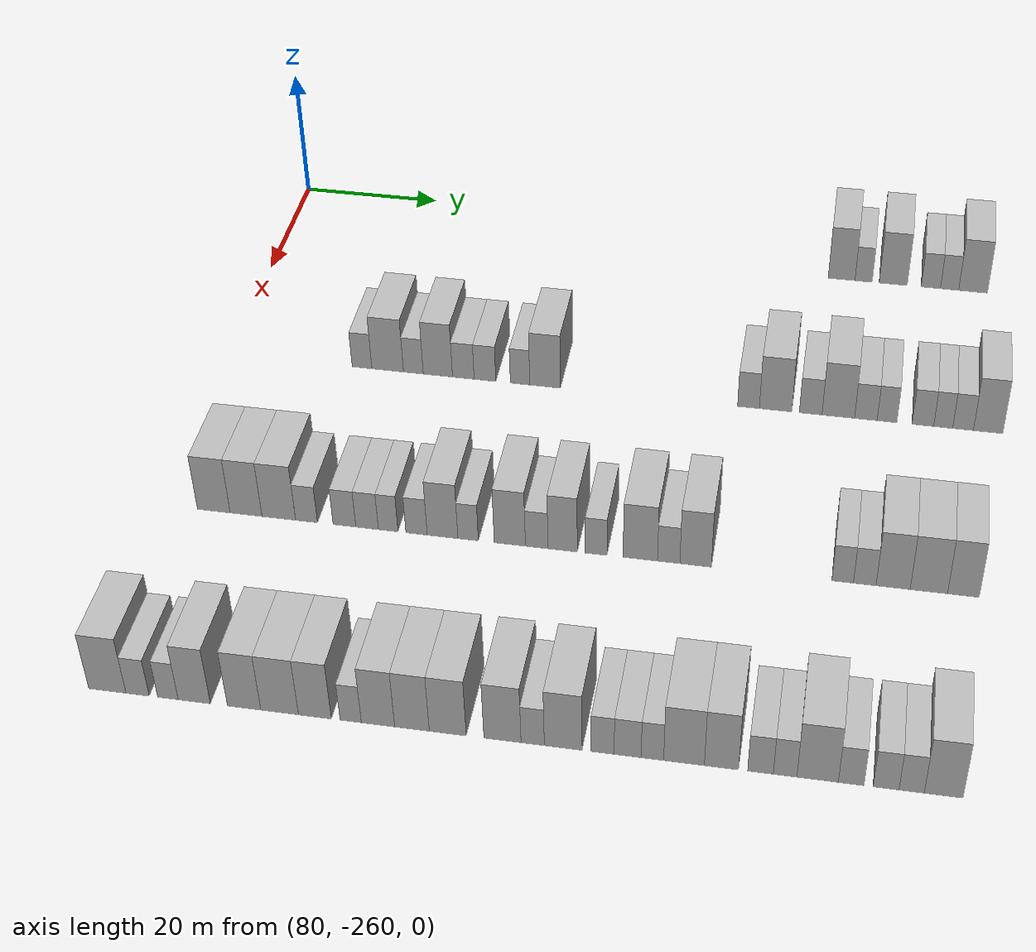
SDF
<sdf version="1.6">
 <world name="default">
  <model name="building_525">
   <static>1</static>
   <pose>85.0000 -178.1124 0 0.000000 0.000000 0.000000</pose>
   <link name="link">
    <pose>0 0 4.50 0 0 0</pose>
    <collision name="collision"><geometry><box><size>10.0000 3.8301 9.0000</size></box></geometry></collision>
    <visual name="visual">
     <cast_shadows>0</cast_shadows>
     <geometry><box><size>10.0000 3.8301 9.0000</size></box></geometry>
     <material>
      <script>
       <uri>model://HANNAS_wall/materials/scripts</uri>
       <uri>model://HANNAS_wall/materials/textures</uri>
       <name>vrc/HANNAS_wall</name>
      </script>
     </material>
    </visual>
   </link>
  </model>
  <model name="building_526">
   <static>1</static>
   <pose>85.0000 -174.9615 0 0.000000 0.000000 0.000000</pose>
   <link name="link">
    <pose>0 0 3.00 0 0 0</pose>
    <collision name="collision"><geometry><box><size>10.0000 2.4717 6.0000</size></box></geometry></collision>
    <visual name="visual">
     <cast_shadows>0</cast_shadows>
     <geometry><box><size>10.0000 2.4717 6.0000</size></box></geometry>
     <material>
      <script>
       <uri>model://HANNAS_wall/materials/scripts</uri>
       <uri>model://HANNAS_wall/materials/textures</uri>
       <name>vrc/HANNAS_wall</name>
      </script>
     </material>
    </visual>
   </link>
  </model>
  <model name="building_527">
   <static>1</static>
   <pose>85.0000 -170.7250 0 0.000000 0.000000 0.000000</pose>
   <link name="link">
    <pose>0 0 4.50 0 0 0</pose>
    <collision name="collision"><geometry><box><size>10.0000 4.0013 9.0000</size></box></geometry></collision>
    <visual name="visual">
     <cast_shadows>0</cast_shadows>
     <geometry><box><size>10.0000 4.0013 9.0000</size></box></geometry>
     <material>
      <script>
       <uri>model://HANNAS_wall/materials/scripts</uri>
       <uri>model://HANNAS_wall/materials/textures</uri>
       <name>vrc/HANNAS_wall</name>
      </script>
     </material>
    </visual>
   </link>
  </model>
  <model name="building_528">
   <static>1</static>
   <pose>85.0000 -165.3638 0 0.000000 0.000000 0.000000</pose>
   <link name="link">
    <pose>0 0 3.00 0 0 0</pose>
    <collision name="collision"><geometry><box><size>10.0000 2.7212 6.0000</size></box></geometry></collision>
    <visual name="visual">
     <cast_shadows>0</cast_shadows>
     <geometry><box><size>10.0000 2.7212 6.0000</size></box></geometry>
     <material>
      <script>
       <uri>model://HANNAS_wall/materials/scripts</uri>
       <uri>model://HANNAS_wall/materials/textures</uri>
       <name>vrc/HANNAS_wall</name>
      </script>
     </material>
    </visual>
   </link>
  </model>
  <model name="building_529">
   <static>1</static>
   <pose>85.0000 -162.7111 0 0.000000 0.000000 0.000000</pose>
   <link name="link">
    <pose>0 0 3.00 0 0 0</pose>
    <collision name="collision"><geometry><box><size>10.0000 2.5842 6.0000</size></box></geometry></collision>
    <visual name="visual">
     <cast_shadows>0</cast_shadows>
     <geometry><box><size>10.0000 2.5842 6.0000</size></box></geometry>
     <material>
      <script>
       <uri>model://HANNAS_wall/materials/scripts</uri>
       <uri>model://HANNAS_wall/materials/textures</uri>
       <name>vrc/HANNAS_wall</name>
      </script>
     </material>
    </visual>
   </link>
  </model>
  <model name="building_530">
   <static>1</static>
   <pose>85.0000 -159.3836 0 0.000000 0.000000 0.000000</pose>
   <link name="link">
    <pose>0 0 4.50 0 0 0</pose>
    <collision name="collision"><geometry><box><size>10.0000 4.0708 9.0000</size></box></geometry></collision>
    <visual name="visual">
     <cast_shadows>0</cast_shadows>
     <geometry><box><size>10.0000 4.0708 9.0000</size></box></geometry>
     <material>
      <script>
       <uri>model://HANNAS_wall/materials/scripts</uri>
       <uri>model://HANNAS_wall/materials/textures</uri>
       <name>vrc/HANNAS_wall</name>
      </script>
     </material>
    </visual>
   </link>
  </model>
  <model name="building_732">
   <static>1</static>
   <pose>115.0000 -241.4664 0 0.000000 0.000000 0.000000</pose>
   <link name="link">
    <pose>0 0 3.00 0 0 0</pose>
    <collision name="collision"><geometry><box><size>10.0000 2.7456 6.0000</size></box></geometry></collision>
    <visual name="visual">
     <cast_shadows>0</cast_shadows>
     <geometry><box><size>10.0000 2.7456 6.0000</size></box></geometry>
     <material>
      <script>
       <uri>model://HANNAS_wall/materials/scripts</uri>
       <uri>model://HANNAS_wall/materials/textures</uri>
       <name>vrc/HANNAS_wall</name>
      </script>
     </material>
    </visual>
   </link>
  </model>
  <model name="building_733">
   <static>1</static>
   <pose>115.0000 -237.8915 0 0.000000 0.000000 0.000000</pose>
   <link name="link">
    <pose>0 0 4.50 0 0 0</pose>
    <collision name="collision"><geometry><box><size>10.0000 4.4044 9.0000</size></box></geometry></collision>
    <visual name="visual">
     <cast_shadows>0</cast_shadows>
     <geometry><box><size>10.0000 4.4044 9.0000</size></box></geometry>
     <material>
      <script>
       <uri>model://HANNAS_wall/materials/scripts</uri>
       <uri>model://HANNAS_wall/materials/textures</uri>
       <name>vrc/HANNAS_wall</name>
      </script>
     </material>
    </visual>
   </link>
  </model>
  <model name="building_734">
   <static>1</static>
   <pose>115.0000 -234.3147 0 0.000000 0.000000 0.000000</pose>
   <link name="link">
    <pose>0 0 3.00 0 0 0</pose>
    <collision name="collision"><geometry><box><size>10.0000 2.7492 6.0000</size></box></geometry></collision>
    <visual name="visual">
     <cast_shadows>0</cast_shadows>
     <geometry><box><size>10.0000 2.7492 6.0000</size></box></geometry>
     <material>
      <script>
       <uri>model://HANNAS_wall/materials/scripts</uri>
       <uri>model://HANNAS_wall/materials/textures</uri>
       <name>vrc/HANNAS_wall</name>
      </script>
     </material>
    </visual>
   </link>
  </model>
  <model name="building_735">
   <static>1</static>
   <pose>115.0000 -230.9154 0 0.000000 0.000000 0.000000</pose>
   <link name="link">
    <pose>0 0 4.50 0 0 0</pose>
    <collision name="collision"><geometry><box><size>10.0000 4.0494 9.0000</size></box></geometry></collision>
    <visual name="visual">
     <cast_shadows>0</cast_shadows>
     <geometry><box><size>10.0000 4.0494 9.0000</size></box></geometry>
     <material>
      <script>
       <uri>model://HANNAS_wall/materials/scripts</uri>
       <uri>model://HANNAS_wall/materials/textures</uri>
       <name>vrc/HANNAS_wall</name>
      </script>
     </material>
    </visual>
   </link>
  </model>
  <model name="building_736">
   <static>1</static>
   <pose>115.0000 -227.3943 0 0.000000 0.000000 0.000000</pose>
   <link name="link">
    <pose>0 0 3.00 0 0 0</pose>
    <collision name="collision"><geometry><box><size>10.0000 2.9928 6.0000</size></box></geometry></collision>
    <visual name="visual">
     <cast_shadows>0</cast_shadows>
     <geometry><box><size>10.0000 2.9928 6.0000</size></box></geometry>
     <material>
      <script>
       <uri>model://HANNAS_wall/materials/scripts</uri>
       <uri>model://HANNAS_wall/materials/textures</uri>
       <name>vrc/HANNAS_wall</name>
      </script>
     </material>
    </visual>
   </link>
  </model>
  <model name="building_737">
   <static>1</static>
   <pose>115.0000 -224.4039 0 0.000000 0.000000 0.000000</pose>
   <link name="link">
    <pose>0 0 3.00 0 0 0</pose>
    <collision name="collision"><geometry><box><size>10.0000 2.9879 6.0000</size></box></geometry></collision>
    <visual name="visual">
     <cast_shadows>0</cast_shadows>
     <geometry><box><size>10.0000 2.9879 6.0000</size></box></geometry>
     <material>
      <script>
       <uri>model://HANNAS_wall/materials/scripts</uri>
       <uri>model://HANNAS_wall/materials/textures</uri>
       <name>vrc/HANNAS_wall</name>
      </script>
     </material>
    </visual>
   </link>
  </model>
  <model name="building_738">
   <static>1</static>
   <pose>115.0000 -219.5782 0 0.000000 0.000000 0.000000</pose>
   <link name="link">
    <pose>0 0 3.00 0 0 0</pose>
    <collision name="collision"><geometry><box><size>10.0000 2.6636 6.0000</size></box></geometry></collision>
    <visual name="visual">
     <cast_shadows>0</cast_shadows>
     <geometry><box><size>10.0000 2.6636 6.0000</size></box></geometry>
     <material>
      <script>
       <uri>model://HANNAS_wall/materials/scripts</uri>
       <uri>model://HANNAS_wall/materials/textures</uri>
       <name>vrc/HANNAS_wall</name>
      </script>
     </material>
    </visual>
   </link>
  </model>
  <model name="building_739">
   <static>1</static>
   <pose>115.0000 -216.1465 0 0.000000 0.000000 0.000000</pose>
   <link name="link">
    <pose>0 0 4.50 0 0 0</pose>
    <collision name="collision"><geometry><box><size>10.0000 4.1998 9.0000</size></box></geometry></collision>
    <visual name="visual">
     <cast_shadows>0</cast_shadows>
     <geometry><box><size>10.0000 4.1998 9.0000</size></box></geometry>
     <material>
      <script>
       <uri>model://HANNAS_wall/materials/scripts</uri>
       <uri>model://HANNAS_wall/materials/textures</uri>
       <name>vrc/HANNAS_wall</name>
      </script>
     </material>
    </visual>
   </link>
  </model>
  <model name="building_740">
   <static>1</static>
   <pose>115.0000 -188.7071 0 0.000000 0.000000 0.000000</pose>
   <link name="link">
    <pose>0 0 3.00 0 0 0</pose>
    <collision name="collision"><geometry><box><size>10.0000 2.8929 6.0000</size></box></geometry></collision>
    <visual name="visual">
     <cast_shadows>0</cast_shadows>
     <geometry><box><size>10.0000 2.8929 6.0000</size></box></geometry>
     <material>
      <script>
       <uri>model://HANNAS_wall/materials/scripts</uri>
       <uri>model://HANNAS_wall/materials/textures</uri>
       <name>vrc/HANNAS_wall</name>
      </script>
     </material>
    </visual>
   </link>
  </model>
  <model name="building_741">
   <static>1</static>
   <pose>115.0000 -185.0999 0 0.000000 0.000000 0.000000</pose>
   <link name="link">
    <pose>0 0 4.50 0 0 0</pose>
    <collision name="collision"><geometry><box><size>10.0000 4.3215 9.0000</size></box></geometry></collision>
    <visual name="visual">
     <cast_shadows>0</cast_shadows>
     <geometry><box><size>10.0000 4.3215 9.0000</size></box></geometry>
     <material>
      <script>
       <uri>model://HANNAS_wall/materials/scripts</uri>
       <uri>model://HANNAS_wall/materials/textures</uri>
       <name>vrc/HANNAS_wall</name>
      </script>
     </material>
    </visual>
   </link>
  </model>
  <model name="building_742">
   <static>1</static>
   <pose>115.0000 -180.4440 0 0.000000 0.000000 0.000000</pose>
   <link name="link">
    <pose>0 0 3.00 0 0 0</pose>
    <collision name="collision"><geometry><box><size>10.0000 2.9902 6.0000</size></box></geometry></collision>
    <visual name="visual">
     <cast_shadows>0</cast_shadows>
     <geometry><box><size>10.0000 2.9902 6.0000</size></box></geometry>
     <material>
      <script>
       <uri>model://HANNAS_wall/materials/scripts</uri>
       <uri>model://HANNAS_wall/materials/textures</uri>
       <name>vrc/HANNAS_wall</name>
      </script>
     </material>
    </visual>
   </link>
  </model>
  <model name="building_743">
   <static>1</static>
   <pose>115.0000 -176.8045 0 0.000000 0.000000 0.000000</pose>
   <link name="link">
    <pose>0 0 4.50 0 0 0</pose>
    <collision name="collision"><geometry><box><size>10.0000 4.2887 9.0000</size></box></geometry></collision>
    <visual name="visual">
     <cast_shadows>0</cast_shadows>
     <geometry><box><size>10.0000 4.2887 9.0000</size></box></geometry>
     <material>
      <script>
       <uri>model://HANNAS_wall/materials/scripts</uri>
       <uri>model://HANNAS_wall/materials/textures</uri>
       <name>vrc/HANNAS_wall</name>
      </script>
     </material>
    </visual>
   </link>
  </model>
  <model name="building_744">
   <static>1</static>
   <pose>115.0000 -173.1736 0 0.000000 0.000000 0.000000</pose>
   <link name="link">
    <pose>0 0 3.00 0 0 0</pose>
    <collision name="collision"><geometry><box><size>10.0000 2.9733 6.0000</size></box></geometry></collision>
    <visual name="visual">
     <cast_shadows>0</cast_shadows>
     <geometry><box><size>10.0000 2.9733 6.0000</size></box></geometry>
     <material>
      <script>
       <uri>model://HANNAS_wall/materials/scripts</uri>
       <uri>model://HANNAS_wall/materials/textures</uri>
       <name>vrc/HANNAS_wall</name>
      </script>
     </material>
    </visual>
   </link>
  </model>
  <model name="building_745">
   <static>1</static>
   <pose>115.0000 -170.3960 0 0.000000 0.000000 0.000000</pose>
   <link name="link">
    <pose>0 0 3.00 0 0 0</pose>
    <collision name="collision"><geometry><box><size>10.0000 2.5818 6.0000</size></box></geometry></collision>
    <visual name="visual">
     <cast_shadows>0</cast_shadows>
     <geometry><box><size>10.0000 2.5818 6.0000</size></box></geometry>
     <material>
      <script>
       <uri>model://HANNAS_wall/materials/scripts</uri>
       <uri>model://HANNAS_wall/materials/textures</uri>
       <name>vrc/HANNAS_wall</name>
      </script>
     </material>
    </visual>
   </link>
  </model>
  <model name="building_746">
   <static>1</static>
   <pose>115.0000 -165.6988 0 0.000000 0.000000 0.000000</pose>
   <link name="link">
    <pose>0 0 3.00 0 0 0</pose>
    <collision name="collision"><geometry><box><size>10.0000 2.8127 6.0000</size></box></geometry></collision>
    <visual name="visual">
     <cast_shadows>0</cast_shadows>
     <geometry><box><size>10.0000 2.8127 6.0000</size></box></geometry>
     <material>
      <script>
       <uri>model://HANNAS_wall/materials/scripts</uri>
       <uri>model://HANNAS_wall/materials/textures</uri>
       <name>vrc/HANNAS_wall</name>
      </script>
     </material>
    </visual>
   </link>
  </model>
  <model name="building_747">
   <static>1</static>
   <pose>115.0000 -163.0574 0 0.000000 0.000000 0.000000</pose>
   <link name="link">
    <pose>0 0 3.00 0 0 0</pose>
    <collision name="collision"><geometry><box><size>10.0000 2.4701 6.0000</size></box></geometry></collision>
    <visual name="visual">
     <cast_shadows>0</cast_shadows>
     <geometry><box><size>10.0000 2.4701 6.0000</size></box></geometry>
     <material>
      <script>
       <uri>model://HANNAS_wall/materials/scripts</uri>
       <uri>model://HANNAS_wall/materials/textures</uri>
       <name>vrc/HANNAS_wall</name>
      </script>
     </material>
    </visual>
   </link>
  </model>
  <model name="building_748">
   <static>1</static>
   <pose>115.0000 -160.4765 0 0.000000 0.000000 0.000000</pose>
   <link name="link">
    <pose>0 0 3.00 0 0 0</pose>
    <collision name="collision"><geometry><box><size>10.0000 2.6918 6.0000</size></box></geometry></collision>
    <visual name="visual">
     <cast_shadows>0</cast_shadows>
     <geometry><box><size>10.0000 2.6918 6.0000</size></box></geometry>
     <material>
      <script>
       <uri>model://HANNAS_wall/materials/scripts</uri>
       <uri>model://HANNAS_wall/materials/textures</uri>
       <name>vrc/HANNAS_wall</name>
      </script>
     </material>
    </visual>
   </link>
  </model>
  <model name="building_749">
   <static>1</static>
   <pose>115.0000 -157.2263 0 0.000000 0.000000 0.000000</pose>
   <link name="link">
    <pose>0 0 4.50 0 0 0</pose>
    <collision name="collision"><geometry><box><size>10.0000 3.8086 9.0000</size></box></geometry></collision>
    <visual name="visual">
     <cast_shadows>0</cast_shadows>
     <geometry><box><size>10.0000 3.8086 9.0000</size></box></geometry>
     <material>
      <script>
       <uri>model://HANNAS_wall/materials/scripts</uri>
       <uri>model://HANNAS_wall/materials/textures</uri>
       <name>vrc/HANNAS_wall</name>
      </script>
     </material>
    </visual>
   </link>
  </model>
  <model name="building_962">
   <static>1</static>
   <pose>145.0000 -252.9162 0 0.000000 0.000000 0.000000</pose>
   <link name="link">
    <pose>0 0 4.50 0 0 0</pose>
    <collision name="collision"><geometry><box><size>10.0000 4.2448 9.0000</size></box></geometry></collision>
    <visual name="visual">
     <cast_shadows>0</cast_shadows>
     <geometry><box><size>10.0000 4.2448 9.0000</size></box></geometry>
     <material>
      <script>
       <uri>model://HANNAS_wall/materials/scripts</uri>
       <uri>model://HANNAS_wall/materials/textures</uri>
       <name>vrc/HANNAS_wall</name>
      </script>
     </material>
    </visual>
   </link>
  </model>
  <model name="building_963">
   <static>1</static>
   <pose>145.0000 -248.7397 0 0.000000 0.000000 0.000000</pose>
   <link name="link">
    <pose>0 0 4.50 0 0 0</pose>
    <collision name="collision"><geometry><box><size>10.0000 4.1081 9.0000</size></box></geometry></collision>
    <visual name="visual">
     <cast_shadows>0</cast_shadows>
     <geometry><box><size>10.0000 4.1081 9.0000</size></box></geometry>
     <material>
      <script>
       <uri>model://HANNAS_wall/materials/scripts</uri>
       <uri>model://HANNAS_wall/materials/textures</uri>
       <name>vrc/HANNAS_wall</name>
      </script>
     </material>
    </visual>
   </link>
  </model>
  <model name="building_964">
   <static>1</static>
   <pose>145.0000 -244.5175 0 0.000000 0.000000 0.000000</pose>
   <link name="link">
    <pose>0 0 4.50 0 0 0</pose>
    <collision name="collision"><geometry><box><size>10.0000 4.3364 9.0000</size></box></geometry></collision>
    <visual name="visual">
     <cast_shadows>0</cast_shadows>
     <geometry><box><size>10.0000 4.3364 9.0000</size></box></geometry>
     <material>
      <script>
       <uri>model://HANNAS_wall/materials/scripts</uri>
       <uri>model://HANNAS_wall/materials/textures</uri>
       <name>vrc/HANNAS_wall</name>
      </script>
     </material>
    </visual>
   </link>
  </model>
  <model name="building_965">
   <static>1</static>
   <pose>145.0000 -240.9493 0 0.000000 0.000000 0.000000</pose>
   <link name="link">
    <pose>0 0 3.00 0 0 0</pose>
    <collision name="collision"><geometry><box><size>10.0000 2.7999 6.0000</size></box></geometry></collision>
    <visual name="visual">
     <cast_shadows>0</cast_shadows>
     <geometry><box><size>10.0000 2.7999 6.0000</size></box></geometry>
     <material>
      <script>
       <uri>model://HANNAS_wall/materials/scripts</uri>
       <uri>model://HANNAS_wall/materials/textures</uri>
       <name>vrc/HANNAS_wall</name>
      </script>
     </material>
    </visual>
   </link>
  </model>
  <model name="building_966">
   <static>1</static>
   <pose>145.0000 -236.1044 0 0.000000 0.000000 0.000000</pose>
   <link name="link">
    <pose>0 0 3.00 0 0 0</pose>
    <collision name="collision"><geometry><box><size>10.0000 2.8899 6.0000</size></box></geometry></collision>
    <visual name="visual">
     <cast_shadows>0</cast_shadows>
     <geometry><box><size>10.0000 2.8899 6.0000</size></box></geometry>
     <material>
      <script>
       <uri>model://HANNAS_wall/materials/scripts</uri>
       <uri>model://HANNAS_wall/materials/textures</uri>
       <name>vrc/HANNAS_wall</name>
      </script>
     </material>
    </visual>
   </link>
  </model>
  <model name="building_967">
   <static>1</static>
   <pose>145.0000 -233.2226 0 0.000000 0.000000 0.000000</pose>
   <link name="link">
    <pose>0 0 3.00 0 0 0</pose>
    <collision name="collision"><geometry><box><size>10.0000 2.8736 6.0000</size></box></geometry></collision>
    <visual name="visual">
     <cast_shadows>0</cast_shadows>
     <geometry><box><size>10.0000 2.8736 6.0000</size></box></geometry>
     <material>
      <script>
       <uri>model://HANNAS_wall/materials/scripts</uri>
       <uri>model://HANNAS_wall/materials/textures</uri>
       <name>vrc/HANNAS_wall</name>
      </script>
     </material>
    </visual>
   </link>
  </model>
  <model name="building_968">
   <static>1</static>
   <pose>145.0000 -230.5410 0 0.000000 0.000000 0.000000</pose>
   <link name="link">
    <pose>0 0 3.00 0 0 0</pose>
    <collision name="collision"><geometry><box><size>10.0000 2.4896 6.0000</size></box></geometry></collision>
    <visual name="visual">
     <cast_shadows>0</cast_shadows>
     <geometry><box><size>10.0000 2.4896 6.0000</size></box></geometry>
     <material>
      <script>
       <uri>model://HANNAS_wall/materials/scripts</uri>
       <uri>model://HANNAS_wall/materials/textures</uri>
       <name>vrc/HANNAS_wall</name>
      </script>
     </material>
    </visual>
   </link>
  </model>
  <model name="building_969">
   <static>1</static>
   <pose>145.0000 -226.9510 0 0.000000 0.000000 0.000000</pose>
   <link name="link">
    <pose>0 0 3.00 0 0 0</pose>
    <collision name="collision"><geometry><box><size>10.0000 2.6904 6.0000</size></box></geometry></collision>
    <visual name="visual">
     <cast_shadows>0</cast_shadows>
     <geometry><box><size>10.0000 2.6904 6.0000</size></box></geometry>
     <material>
      <script>
       <uri>model://HANNAS_wall/materials/scripts</uri>
       <uri>model://HANNAS_wall/materials/textures</uri>
       <name>vrc/HANNAS_wall</name>
      </script>
     </material>
    </visual>
   </link>
  </model>
  <model name="building_970">
   <static>1</static>
   <pose>145.0000 -223.6687 0 0.000000 0.000000 0.000000</pose>
   <link name="link">
    <pose>0 0 4.50 0 0 0</pose>
    <collision name="collision"><geometry><box><size>10.0000 3.8743 9.0000</size></box></geometry></collision>
    <visual name="visual">
     <cast_shadows>0</cast_shadows>
     <geometry><box><size>10.0000 3.8743 9.0000</size></box></geometry>
     <material>
      <script>
       <uri>model://HANNAS_wall/materials/scripts</uri>
       <uri>model://HANNAS_wall/materials/textures</uri>
       <name>vrc/HANNAS_wall</name>
      </script>
     </material>
    </visual>
   </link>
  </model>
  <model name="building_971">
   <static>1</static>
   <pose>145.0000 -220.4472 0 0.000000 0.000000 0.000000</pose>
   <link name="link">
    <pose>0 0 3.00 0 0 0</pose>
    <collision name="collision"><geometry><box><size>10.0000 2.5687 6.0000</size></box></geometry></collision>
    <visual name="visual">
     <cast_shadows>0</cast_shadows>
     <geometry><box><size>10.0000 2.5687 6.0000</size></box></geometry>
     <material>
      <script>
       <uri>model://HANNAS_wall/materials/scripts</uri>
       <uri>model://HANNAS_wall/materials/textures</uri>
       <name>vrc/HANNAS_wall</name>
      </script>
     </material>
    </visual>
   </link>
  </model>
  <model name="building_972">
   <static>1</static>
   <pose>145.0000 -215.2169 0 0.000000 0.000000 0.000000</pose>
   <link name="link">
    <pose>0 0 4.50 0 0 0</pose>
    <collision name="collision"><geometry><box><size>10.0000 3.8918 9.0000</size></box></geometry></collision>
    <visual name="visual">
     <cast_shadows>0</cast_shadows>
     <geometry><box><size>10.0000 3.8918 9.0000</size></box></geometry>
     <material>
      <script>
       <uri>model://HANNAS_wall/materials/scripts</uri>
       <uri>model://HANNAS_wall/materials/textures</uri>
       <name>vrc/HANNAS_wall</name>
      </script>
     </material>
    </visual>
   </link>
  </model>
  <model name="building_973">
   <static>1</static>
   <pose>145.0000 -211.8642 0 0.000000 0.000000 0.000000</pose>
   <link name="link">
    <pose>0 0 3.00 0 0 0</pose>
    <collision name="collision"><geometry><box><size>10.0000 2.8136 6.0000</size></box></geometry></collision>
    <visual name="visual">
     <cast_shadows>0</cast_shadows>
     <geometry><box><size>10.0000 2.8136 6.0000</size></box></geometry>
     <material>
      <script>
       <uri>model://HANNAS_wall/materials/scripts</uri>
       <uri>model://HANNAS_wall/materials/textures</uri>
       <name>vrc/HANNAS_wall</name>
      </script>
     </material>
    </visual>
   </link>
  </model>
  <model name="building_974">
   <static>1</static>
   <pose>145.0000 -208.6394 0 0.000000 0.000000 0.000000</pose>
   <link name="link">
    <pose>0 0 4.50 0 0 0</pose>
    <collision name="collision"><geometry><box><size>10.0000 3.6361 9.0000</size></box></geometry></collision>
    <visual name="visual">
     <cast_shadows>0</cast_shadows>
     <geometry><box><size>10.0000 3.6361 9.0000</size></box></geometry>
     <material>
      <script>
       <uri>model://HANNAS_wall/materials/scripts</uri>
       <uri>model://HANNAS_wall/materials/textures</uri>
       <name>vrc/HANNAS_wall</name>
      </script>
     </material>
    </visual>
   </link>
  </model>
  <model name="building_975">
   <static>1</static>
   <pose>145.0000 -204.4892 0 0.000000 0.000000 0.000000</pose>
   <link name="link">
    <pose>0 0 3.00 0 0 0</pose>
    <collision name="collision"><geometry><box><size>10.0000 2.6643 6.0000</size></box></geometry></collision>
    <visual name="visual">
     <cast_shadows>0</cast_shadows>
     <geometry><box><size>10.0000 2.6643 6.0000</size></box></geometry>
     <material>
      <script>
       <uri>model://HANNAS_wall/materials/scripts</uri>
       <uri>model://HANNAS_wall/materials/textures</uri>
       <name>vrc/HANNAS_wall</name>
      </script>
     </material>
    </visual>
   </link>
  </model>
  <model name="building_976">
   <static>1</static>
   <pose>145.0000 -199.0519 0 0.000000 0.000000 0.000000</pose>
   <link name="link">
    <pose>0 0 4.50 0 0 0</pose>
    <collision name="collision"><geometry><box><size>10.0000 4.2102 9.0000</size></box></geometry></collision>
    <visual name="visual">
     <cast_shadows>0</cast_shadows>
     <geometry><box><size>10.0000 4.2102 9.0000</size></box></geometry>
     <material>
      <script>
       <uri>model://HANNAS_wall/materials/scripts</uri>
       <uri>model://HANNAS_wall/materials/textures</uri>
       <name>vrc/HANNAS_wall</name>
      </script>
     </material>
    </visual>
   </link>
  </model>
  <model name="building_977">
   <static>1</static>
   <pose>145.0000 -195.5742 0 0.000000 0.000000 0.000000</pose>
   <link name="link">
    <pose>0 0 3.00 0 0 0</pose>
    <collision name="collision"><geometry><box><size>10.0000 2.7451 6.0000</size></box></geometry></collision>
    <visual name="visual">
     <cast_shadows>0</cast_shadows>
     <geometry><box><size>10.0000 2.7451 6.0000</size></box></geometry>
     <material>
      <script>
       <uri>model://HANNAS_wall/materials/scripts</uri>
       <uri>model://HANNAS_wall/materials/textures</uri>
       <name>vrc/HANNAS_wall</name>
      </script>
     </material>
    </visual>
   </link>
  </model>
  <model name="building_978">
   <static>1</static>
   <pose>145.0000 -192.2765 0 0.000000 0.000000 0.000000</pose>
   <link name="link">
    <pose>0 0 4.50 0 0 0</pose>
    <collision name="collision"><geometry><box><size>10.0000 3.8504 9.0000</size></box></geometry></collision>
    <visual name="visual">
     <cast_shadows>0</cast_shadows>
     <geometry><box><size>10.0000 3.8504 9.0000</size></box></geometry>
     <material>
      <script>
       <uri>model://HANNAS_wall/materials/scripts</uri>
       <uri>model://HANNAS_wall/materials/textures</uri>
       <name>vrc/HANNAS_wall</name>
      </script>
     </material>
    </visual>
   </link>
  </model>
  <model name="building_979">
   <static>1</static>
   <pose>145.0000 -174.4854 0 0.000000 0.000000 0.000000</pose>
   <link name="link">
    <pose>0 0 3.00 0 0 0</pose>
    <collision name="collision"><geometry><box><size>10.0000 2.5773 6.0000</size></box></geometry></collision>
    <visual name="visual">
     <cast_shadows>0</cast_shadows>
     <geometry><box><size>10.0000 2.5773 6.0000</size></box></geometry>
     <material>
      <script>
       <uri>model://HANNAS_wall/materials/scripts</uri>
       <uri>model://HANNAS_wall/materials/textures</uri>
       <name>vrc/HANNAS_wall</name>
      </script>
     </material>
    </visual>
   </link>
  </model>
  <model name="building_980">
   <static>1</static>
   <pose>145.0000 -171.8385 0 0.000000 0.000000 0.000000</pose>
   <link name="link">
    <pose>0 0 3.00 0 0 0</pose>
    <collision name="collision"><geometry><box><size>10.0000 2.7165 6.0000</size></box></geometry></collision>
    <visual name="visual">
     <cast_shadows>0</cast_shadows>
     <geometry><box><size>10.0000 2.7165 6.0000</size></box></geometry>
     <material>
      <script>
       <uri>model://HANNAS_wall/materials/scripts</uri>
       <uri>model://HANNAS_wall/materials/textures</uri>
       <name>vrc/HANNAS_wall</name>
      </script>
     </material>
    </visual>
   </link>
  </model>
  <model name="building_981">
   <static>1</static>
   <pose>145.0000 -168.4534 0 0.000000 0.000000 0.000000</pose>
   <link name="link">
    <pose>0 0 4.50 0 0 0</pose>
    <collision name="collision"><geometry><box><size>10.0000 4.0537 9.0000</size></box></geometry></collision>
    <visual name="visual">
     <cast_shadows>0</cast_shadows>
     <geometry><box><size>10.0000 4.0537 9.0000</size></box></geometry>
     <material>
      <script>
       <uri>model://HANNAS_wall/materials/scripts</uri>
       <uri>model://HANNAS_wall/materials/textures</uri>
       <name>vrc/HANNAS_wall</name>
      </script>
     </material>
    </visual>
   </link>
  </model>
  <model name="building_982">
   <static>1</static>
   <pose>145.0000 -164.2059 0 0.000000 0.000000 0.000000</pose>
   <link name="link">
    <pose>0 0 4.50 0 0 0</pose>
    <collision name="collision"><geometry><box><size>10.0000 4.4413 9.0000</size></box></geometry></collision>
    <visual name="visual">
     <cast_shadows>0</cast_shadows>
     <geometry><box><size>10.0000 4.4413 9.0000</size></box></geometry>
     <material>
      <script>
       <uri>model://HANNAS_wall/materials/scripts</uri>
       <uri>model://HANNAS_wall/materials/textures</uri>
       <name>vrc/HANNAS_wall</name>
      </script>
     </material>
    </visual>
   </link>
  </model>
  <model name="building_983">
   <static>1</static>
   <pose>145.0000 -160.1131 0 0.000000 0.000000 0.000000</pose>
   <link name="link">
    <pose>0 0 4.50 0 0 0</pose>
    <collision name="collision"><geometry><box><size>10.0000 3.7444 9.0000</size></box></geometry></collision>
    <visual name="visual">
     <cast_shadows>0</cast_shadows>
     <geometry><box><size>10.0000 3.7444 9.0000</size></box></geometry>
     <material>
      <script>
       <uri>model://HANNAS_wall/materials/scripts</uri>
       <uri>model://HANNAS_wall/materials/textures</uri>
       <name>vrc/HANNAS_wall</name>
      </script>
     </material>
    </visual>
   </link>
  </model>
  <model name="building_1192">
   <static>1</static>
   <pose>175.0000 -255.9592 0 0.000000 0.000000 0.000000</pose>
   <link name="link">
    <pose>0 0 4.50 0 0 0</pose>
    <collision name="collision"><geometry><box><size>10.0000 4.4086 9.0000</size></box></geometry></collision>
    <visual name="visual">
     <cast_shadows>0</cast_shadows>
     <geometry><box><size>10.0000 4.4086 9.0000</size></box></geometry>
     <material>
      <script>
       <uri>model://HANNAS_wall/materials/scripts</uri>
       <uri>model://HANNAS_wall/materials/textures</uri>
       <name>vrc/HANNAS_wall</name>
      </script>
     </material>
    </visual>
   </link>
  </model>
  <model name="building_1193">
   <static>1</static>
   <pose>175.0000 -252.3829 0 0.000000 0.000000 0.000000</pose>
   <link name="link">
    <pose>0 0 3.00 0 0 0</pose>
    <collision name="collision"><geometry><box><size>10.0000 2.7440 6.0000</size></box></geometry></collision>
    <visual name="visual">
     <cast_shadows>0</cast_shadows>
     <geometry><box><size>10.0000 2.7440 6.0000</size></box></geometry>
     <material>
      <script>
       <uri>model://HANNAS_wall/materials/scripts</uri>
       <uri>model://HANNAS_wall/materials/textures</uri>
       <name>vrc/HANNAS_wall</name>
      </script>
     </material>
    </visual>
   </link>
  </model>
  <model name="building_1194">
   <static>1</static>
   <pose>175.0000 -248.8060 0 0.000000 0.000000 0.000000</pose>
   <link name="link">
    <pose>0 0 3.00 0 0 0</pose>
    <collision name="collision"><geometry><box><size>10.0000 2.4097 6.0000</size></box></geometry></collision>
    <visual name="visual">
     <cast_shadows>0</cast_shadows>
     <geometry><box><size>10.0000 2.4097 6.0000</size></box></geometry>
     <material>
      <script>
       <uri>model://HANNAS_wall/materials/scripts</uri>
       <uri>model://HANNAS_wall/materials/textures</uri>
       <name>vrc/HANNAS_wall</name>
      </script>
     </material>
    </visual>
   </link>
  </model>
  <model name="building_1195">
   <static>1</static>
   <pose>175.0000 -245.7148 0 0.000000 0.000000 0.000000</pose>
   <link name="link">
    <pose>0 0 4.50 0 0 0</pose>
    <collision name="collision"><geometry><box><size>10.0000 3.7727 9.0000</size></box></geometry></collision>
    <visual name="visual">
     <cast_shadows>0</cast_shadows>
     <geometry><box><size>10.0000 3.7727 9.0000</size></box></geometry>
     <material>
      <script>
       <uri>model://HANNAS_wall/materials/scripts</uri>
       <uri>model://HANNAS_wall/materials/textures</uri>
       <name>vrc/HANNAS_wall</name>
      </script>
     </material>
    </visual>
   </link>
  </model>
  <model name="building_1196">
   <static>1</static>
   <pose>175.0000 -239.8880 0 0.000000 0.000000 0.000000</pose>
   <link name="link">
    <pose>0 0 4.50 0 0 0</pose>
    <collision name="collision"><geometry><box><size>10.0000 3.8810 9.0000</size></box></geometry></collision>
    <visual name="visual">
     <cast_shadows>0</cast_shadows>
     <geometry><box><size>10.0000 3.8810 9.0000</size></box></geometry>
     <material>
      <script>
       <uri>model://HANNAS_wall/materials/scripts</uri>
       <uri>model://HANNAS_wall/materials/textures</uri>
       <name>vrc/HANNAS_wall</name>
      </script>
     </material>
    </visual>
   </link>
  </model>
  <model name="building_1197">
   <static>1</static>
   <pose>175.0000 -235.7649 0 0.000000 0.000000 0.000000</pose>
   <link name="link">
    <pose>0 0 4.50 0 0 0</pose>
    <collision name="collision"><geometry><box><size>10.0000 4.3652 9.0000</size></box></geometry></collision>
    <visual name="visual">
     <cast_shadows>0</cast_shadows>
     <geometry><box><size>10.0000 4.3652 9.0000</size></box></geometry>
     <material>
      <script>
       <uri>model://HANNAS_wall/materials/scripts</uri>
       <uri>model://HANNAS_wall/materials/textures</uri>
       <name>vrc/HANNAS_wall</name>
      </script>
     </material>
    </visual>
   </link>
  </model>
  <model name="building_1198">
   <static>1</static>
   <pose>175.0000 -231.6786 0 0.000000 0.000000 0.000000</pose>
   <link name="link">
    <pose>0 0 4.50 0 0 0</pose>
    <collision name="collision"><geometry><box><size>10.0000 3.8075 9.0000</size></box></geometry></collision>
    <visual name="visual">
     <cast_shadows>0</cast_shadows>
     <geometry><box><size>10.0000 3.8075 9.0000</size></box></geometry>
     <material>
      <script>
       <uri>model://HANNAS_wall/materials/scripts</uri>
       <uri>model://HANNAS_wall/materials/textures</uri>
       <name>vrc/HANNAS_wall</name>
      </script>
     </material>
    </visual>
   </link>
  </model>
  <model name="building_1199">
   <static>1</static>
   <pose>175.0000 -227.5556 0 0.000000 0.000000 0.000000</pose>
   <link name="link">
    <pose>0 0 3.00 0 0 0</pose>
    <collision name="collision"><geometry><box><size>10.0000 2.4385 6.0000</size></box></geometry></collision>
    <visual name="visual">
     <cast_shadows>0</cast_shadows>
     <geometry><box><size>10.0000 2.4385 6.0000</size></box></geometry>
     <material>
      <script>
       <uri>model://HANNAS_wall/materials/scripts</uri>
       <uri>model://HANNAS_wall/materials/textures</uri>
       <name>vrc/HANNAS_wall</name>
      </script>
     </material>
    </visual>
   </link>
  </model>
  <model name="building_1200">
   <static>1</static>
   <pose>175.0000 -224.4293 0 0.000000 0.000000 0.000000</pose>
   <link name="link">
    <pose>0 0 4.50 0 0 0</pose>
    <collision name="collision"><geometry><box><size>10.0000 3.8142 9.0000</size></box></geometry></collision>
    <visual name="visual">
     <cast_shadows>0</cast_shadows>
     <geometry><box><size>10.0000 3.8142 9.0000</size></box></geometry>
     <material>
      <script>
       <uri>model://HANNAS_wall/materials/scripts</uri>
       <uri>model://HANNAS_wall/materials/textures</uri>
       <name>vrc/HANNAS_wall</name>
      </script>
     </material>
    </visual>
   </link>
  </model>
  <model name="building_1201">
   <static>1</static>
   <pose>175.0000 -220.5492 0 0.000000 0.000000 0.000000</pose>
   <link name="link">
    <pose>0 0 4.50 0 0 0</pose>
    <collision name="collision"><geometry><box><size>10.0000 3.9459 9.0000</size></box></geometry></collision>
    <visual name="visual">
     <cast_shadows>0</cast_shadows>
     <geometry><box><size>10.0000 3.9459 9.0000</size></box></geometry>
     <material>
      <script>
       <uri>model://HANNAS_wall/materials/scripts</uri>
       <uri>model://HANNAS_wall/materials/textures</uri>
       <name>vrc/HANNAS_wall</name>
      </script>
     </material>
    </visual>
   </link>
  </model>
  <model name="building_1202">
   <static>1</static>
   <pose>175.0000 -216.4774 0 0.000000 0.000000 0.000000</pose>
   <link name="link">
    <pose>0 0 4.50 0 0 0</pose>
    <collision name="collision"><geometry><box><size>10.0000 4.1977 9.0000</size></box></geometry></collision>
    <visual name="visual">
     <cast_shadows>0</cast_shadows>
     <geometry><box><size>10.0000 4.1977 9.0000</size></box></geometry>
     <material>
      <script>
       <uri>model://HANNAS_wall/materials/scripts</uri>
       <uri>model://HANNAS_wall/materials/textures</uri>
       <name>vrc/HANNAS_wall</name>
      </script>
     </material>
    </visual>
   </link>
  </model>
  <model name="building_1203">
   <static>1</static>
   <pose>175.0000 -210.2884 0 0.000000 0.000000 0.000000</pose>
   <link name="link">
    <pose>0 0 4.50 0 0 0</pose>
    <collision name="collision"><geometry><box><size>10.0000 4.1804 9.0000</size></box></geometry></collision>
    <visual name="visual">
     <cast_shadows>0</cast_shadows>
     <geometry><box><size>10.0000 4.1804 9.0000</size></box></geometry>
     <material>
      <script>
       <uri>model://HANNAS_wall/materials/scripts</uri>
       <uri>model://HANNAS_wall/materials/textures</uri>
       <name>vrc/HANNAS_wall</name>
      </script>
     </material>
    </visual>
   </link>
  </model>
  <model name="building_1204">
   <static>1</static>
   <pose>175.0000 -206.8895 0 0.000000 0.000000 0.000000</pose>
   <link name="link">
    <pose>0 0 3.00 0 0 0</pose>
    <collision name="collision"><geometry><box><size>10.0000 2.6173 6.0000</size></box></geometry></collision>
    <visual name="visual">
     <cast_shadows>0</cast_shadows>
     <geometry><box><size>10.0000 2.6173 6.0000</size></box></geometry>
     <material>
      <script>
       <uri>model://HANNAS_wall/materials/scripts</uri>
       <uri>model://HANNAS_wall/materials/textures</uri>
       <name>vrc/HANNAS_wall</name>
      </script>
     </material>
    </visual>
   </link>
  </model>
  <model name="building_1205">
   <static>1</static>
   <pose>175.0000 -203.4661 0 0.000000 0.000000 0.000000</pose>
   <link name="link">
    <pose>0 0 4.50 0 0 0</pose>
    <collision name="collision"><geometry><box><size>10.0000 4.2295 9.0000</size></box></geometry></collision>
    <visual name="visual">
     <cast_shadows>0</cast_shadows>
     <geometry><box><size>10.0000 4.2295 9.0000</size></box></geometry>
     <material>
      <script>
       <uri>model://HANNAS_wall/materials/scripts</uri>
       <uri>model://HANNAS_wall/materials/textures</uri>
       <name>vrc/HANNAS_wall</name>
      </script>
     </material>
    </visual>
   </link>
  </model>
  <model name="building_1206">
   <static>1</static>
   <pose>175.0000 -199.0668 0 0.000000 0.000000 0.000000</pose>
   <link name="link">
    <pose>0 0 3.00 0 0 0</pose>
    <collision name="collision"><geometry><box><size>10.0000 2.5690 6.0000</size></box></geometry></collision>
    <visual name="visual">
     <cast_shadows>0</cast_shadows>
     <geometry><box><size>10.0000 2.5690 6.0000</size></box></geometry>
     <material>
      <script>
       <uri>model://HANNAS_wall/materials/scripts</uri>
       <uri>model://HANNAS_wall/materials/textures</uri>
       <name>vrc/HANNAS_wall</name>
      </script>
     </material>
    </visual>
   </link>
  </model>
  <model name="building_1207">
   <static>1</static>
   <pose>175.0000 -196.2846 0 0.000000 0.000000 0.000000</pose>
   <link name="link">
    <pose>0 0 3.00 0 0 0</pose>
    <collision name="collision"><geometry><box><size>10.0000 2.9954 6.0000</size></box></geometry></collision>
    <visual name="visual">
     <cast_shadows>0</cast_shadows>
     <geometry><box><size>10.0000 2.9954 6.0000</size></box></geometry>
     <material>
      <script>
       <uri>model://HANNAS_wall/materials/scripts</uri>
       <uri>model://HANNAS_wall/materials/textures</uri>
       <name>vrc/HANNAS_wall</name>
      </script>
     </material>
    </visual>
   </link>
  </model>
  <model name="building_1208">
   <static>1</static>
   <pose>175.0000 -193.5441 0 0.000000 0.000000 0.000000</pose>
   <link name="link">
    <pose>0 0 3.00 0 0 0</pose>
    <collision name="collision"><geometry><box><size>10.0000 2.4856 6.0000</size></box></geometry></collision>
    <visual name="visual">
     <cast_shadows>0</cast_shadows>
     <geometry><box><size>10.0000 2.4856 6.0000</size></box></geometry>
     <material>
      <script>
       <uri>model://HANNAS_wall/materials/scripts</uri>
       <uri>model://HANNAS_wall/materials/textures</uri>
       <name>vrc/HANNAS_wall</name>
      </script>
     </material>
    </visual>
   </link>
  </model>
  <model name="building_1209">
   <static>1</static>
   <pose>175.0000 -190.0582 0 0.000000 0.000000 0.000000</pose>
   <link name="link">
    <pose>0 0 4.50 0 0 0</pose>
    <collision name="collision"><geometry><box><size>10.0000 4.4863 9.0000</size></box></geometry></collision>
    <visual name="visual">
     <cast_shadows>0</cast_shadows>
     <geometry><box><size>10.0000 4.4863 9.0000</size></box></geometry>
     <material>
      <script>
       <uri>model://HANNAS_wall/materials/scripts</uri>
       <uri>model://HANNAS_wall/materials/textures</uri>
       <name>vrc/HANNAS_wall</name>
      </script>
     </material>
    </visual>
   </link>
  </model>
  <model name="building_1210">
   <static>1</static>
   <pose>175.0000 -185.9407 0 0.000000 0.000000 0.000000</pose>
   <link name="link">
    <pose>0 0 4.50 0 0 0</pose>
    <collision name="collision"><geometry><box><size>10.0000 3.7485 9.0000</size></box></geometry></collision>
    <visual name="visual">
     <cast_shadows>0</cast_shadows>
     <geometry><box><size>10.0000 3.7485 9.0000</size></box></geometry>
     <material>
      <script>
       <uri>model://HANNAS_wall/materials/scripts</uri>
       <uri>model://HANNAS_wall/materials/textures</uri>
       <name>vrc/HANNAS_wall</name>
      </script>
     </material>
    </visual>
   </link>
  </model>
  <model name="building_1211">
   <static>1</static>
   <pose>175.0000 -181.6688 0 0.000000 0.000000 0.000000</pose>
   <link name="link">
    <pose>0 0 3.00 0 0 0</pose>
    <collision name="collision"><geometry><box><size>10.0000 2.7953 6.0000</size></box></geometry></collision>
    <visual name="visual">
     <cast_shadows>0</cast_shadows>
     <geometry><box><size>10.0000 2.7953 6.0000</size></box></geometry>
     <material>
      <script>
       <uri>model://HANNAS_wall/materials/scripts</uri>
       <uri>model://HANNAS_wall/materials/textures</uri>
       <name>vrc/HANNAS_wall</name>
      </script>
     </material>
    </visual>
   </link>
  </model>
  <model name="building_1212">
   <static>1</static>
   <pose>175.0000 -178.9866 0 0.000000 0.000000 0.000000</pose>
   <link name="link">
    <pose>0 0 3.00 0 0 0</pose>
    <collision name="collision"><geometry><box><size>10.0000 2.5692 6.0000</size></box></geometry></collision>
    <visual name="visual">
     <cast_shadows>0</cast_shadows>
     <geometry><box><size>10.0000 2.5692 6.0000</size></box></geometry>
     <material>
      <script>
       <uri>model://HANNAS_wall/materials/scripts</uri>
       <uri>model://HANNAS_wall/materials/textures</uri>
       <name>vrc/HANNAS_wall</name>
      </script>
     </material>
    </visual>
   </link>
  </model>
  <model name="building_1213">
   <static>1</static>
   <pose>175.0000 -175.4569 0 0.000000 0.000000 0.000000</pose>
   <link name="link">
    <pose>0 0 4.50 0 0 0</pose>
    <collision name="collision"><geometry><box><size>10.0000 4.4900 9.0000</size></box></geometry></collision>
    <visual name="visual">
     <cast_shadows>0</cast_shadows>
     <geometry><box><size>10.0000 4.4900 9.0000</size></box></geometry>
     <material>
      <script>
       <uri>model://HANNAS_wall/materials/scripts</uri>
       <uri>model://HANNAS_wall/materials/textures</uri>
       <name>vrc/HANNAS_wall</name>
      </script>
     </material>
    </visual>
   </link>
  </model>
  <model name="building_1214">
   <static>1</static>
   <pose>175.0000 -171.8271 0 0.000000 0.000000 0.000000</pose>
   <link name="link">
    <pose>0 0 3.00 0 0 0</pose>
    <collision name="collision"><geometry><box><size>10.0000 2.7697 6.0000</size></box></geometry></collision>
    <visual name="visual">
     <cast_shadows>0</cast_shadows>
     <geometry><box><size>10.0000 2.7697 6.0000</size></box></geometry>
     <material>
      <script>
       <uri>model://HANNAS_wall/materials/scripts</uri>
       <uri>model://HANNAS_wall/materials/textures</uri>
       <name>vrc/HANNAS_wall</name>
      </script>
     </material>
    </visual>
   </link>
  </model>
  <model name="building_1215">
   <static>1</static>
   <pose>175.0000 -168.0618 0 0.000000 0.000000 0.000000</pose>
   <link name="link">
    <pose>0 0 3.00 0 0 0</pose>
    <collision name="collision"><geometry><box><size>10.0000 2.7608 6.0000</size></box></geometry></collision>
    <visual name="visual">
     <cast_shadows>0</cast_shadows>
     <geometry><box><size>10.0000 2.7608 6.0000</size></box></geometry>
     <material>
      <script>
       <uri>model://HANNAS_wall/materials/scripts</uri>
       <uri>model://HANNAS_wall/materials/textures</uri>
       <name>vrc/HANNAS_wall</name>
      </script>
     </material>
    </visual>
   </link>
  </model>
  <model name="building_1216">
   <static>1</static>
   <pose>175.0000 -165.3240 0 0.000000 0.000000 0.000000</pose>
   <link name="link">
    <pose>0 0 3.00 0 0 0</pose>
    <collision name="collision"><geometry><box><size>10.0000 2.7149 6.0000</size></box></geometry></collision>
    <visual name="visual">
     <cast_shadows>0</cast_shadows>
     <geometry><box><size>10.0000 2.7149 6.0000</size></box></geometry>
     <material>
      <script>
       <uri>model://HANNAS_wall/materials/scripts</uri>
       <uri>model://HANNAS_wall/materials/textures</uri>
       <name>vrc/HANNAS_wall</name>
      </script>
     </material>
    </visual>
   </link>
  </model>
  <model name="building_1217">
   <static>1</static>
   <pose>175.0000 -161.8991 0 0.000000 0.000000 0.000000</pose>
   <link name="link">
    <pose>0 0 4.50 0 0 0</pose>
    <collision name="collision"><geometry><box><size>10.0000 4.1348 9.0000</size></box></geometry></collision>
    <visual name="visual">
     <cast_shadows>0</cast_shadows>
     <geometry><box><size>10.0000 4.1348 9.0000</size></box></geometry>
     <material>
      <script>
       <uri>model://HANNAS_wall/materials/scripts</uri>
       <uri>model://HANNAS_wall/materials/textures</uri>
       <name>vrc/HANNAS_wall</name>
      </script>
     </material>
    </visual>
   </link>
  </model>
 </world>
</sdf>
